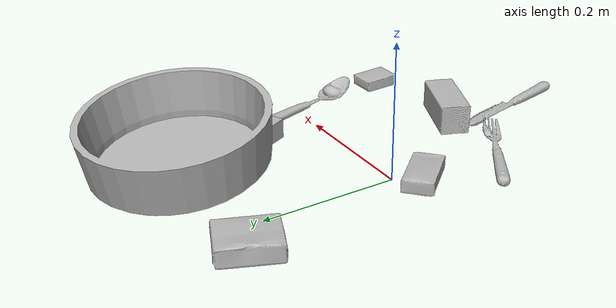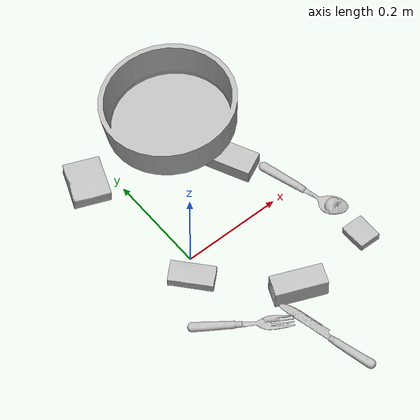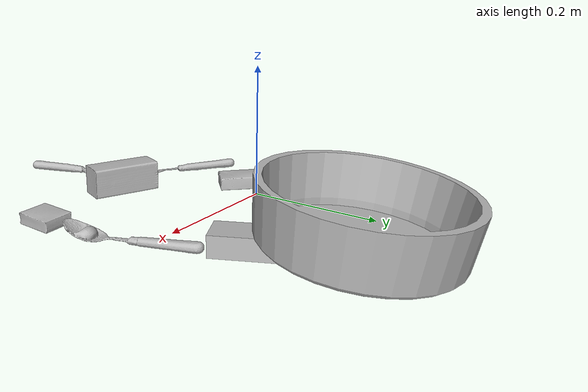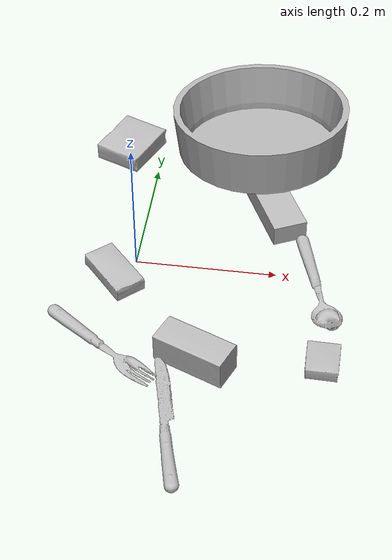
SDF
<sdf version="1.4">
  <world name="default">
    <light name="light1" type="point">
      <pose>0 0 1 0 0 0</pose>
      <diffuse>3 3 3 1</diffuse>
      <specular>3 3 3 1</specular>
    </light>
    <light name="light2" type="point">
      <pose>0 0.5 2 0 0 0</pose>
      <diffuse>1 1 1 1</diffuse>
      <specular>1 1 1 1</specular>
    </light>
    <light name="light3" type="point">
      <pose>0 0.5 2 0 0 0</pose>
      <diffuse>3 3 3 1</diffuse>
      <specular>3 3 3 1</specular>
    </light>
    <scene>
      <ambient>0.7 0.7 0.7</ambient>
    </scene>
    <model name="box11">
      <link name="link_box11">
        <collision name="default">
          <geometry>
            <mesh>
              <uri>model://sugar_box/collision_meshes/collision.obj</uri>
              <scale>0.5 0.5 0.5</scale>
            </mesh>
          </geometry>
          <surface>
            <friction>
              <ode>
                <mu>0.5</mu>
                <mu2>0.5</mu2>
              </ode>
            </friction>
          <contact>
        <ode>
            <max_vel>0</max_vel>
            <min_depth>0.0001</min_depth>
            <kp>1e8</kp>
        </ode>
    </contact></surface>
        </collision>
        <visual name="default">
          <geometry>
            <mesh>
              <uri>model://sugar_box/visual_meshes/visual.dae</uri>
              <scale>0.5 0.5 0.5</scale>
            </mesh>
          </geometry>
        </visual>
        <inertial>
          <mass>0.0727815181016922</mass>
          <pose>0.0005171863595023751 1.924554817378521e-05 -0.00018182402709499002 -0.0004046263004245651 0.001050663405794887 0.002615379021776999</pose>
          <inertia>
            <ixx>1.5160335e-05</ixx>
            <iyy>4.900132e-05</iyy>
            <izz>5.8660433e-05</izz>
            <ixy>0</ixy>
            <ixz>0</ixz>
            <iyz>0</iyz>
          </inertia>
        </inertial>
      </link>
      <pose>-0.023955702781677246 -0.034969575703144073 0.011399303562939167 0.0007758354675318726 -0.02343293735669057 2.3045017529010794</pose>
    </model>
    <model name="box12">
      <link name="link_box12">
        <collision name="default">
          <geometry>
            <mesh>
              <uri>model://gelatin_box/collision_meshes/collision.obj</uri>
              <scale>1.0 1.0 1.0</scale>
            </mesh>
          </geometry>
          <surface>
            <friction>
              <ode>
                <mu>0.5</mu>
                <mu2>0.5</mu2>
              </ode>
            </friction>
          <contact>
        <ode>
            <max_vel>0</max_vel>
            <min_depth>0.0001</min_depth>
            <kp>1e8</kp>
        </ode>
    </contact></surface>
        </collision>
        <visual name="default">
          <geometry>
            <mesh>
              <uri>model://gelatin_box/visual_meshes/visual.dae</uri>
              <scale>1.0 1.0 1.0</scale>
            </mesh>
          </geometry>
        </visual>
        <inertial>
          <mass>0.2761145234107971</mass>
          <pose>0.000431961816502735 0.00011156871187267825 -0.0003640321083366871 -0.0010503719804291966 -0.004755819155973465 0.01644055947187314</pose>
          <inertia>
            <ixx>0.00019491432</ixx>
            <iyy>0.00013922628</iyy>
            <izz>0.00029670302</izz>
            <ixy>0</ixy>
            <ixz>0</ixz>
            <iyz>0</iyz>
          </inertia>
        </inertial>
      </link>
      <pose>-0.0495305210351944 0.24684949219226837 0.015168312937021255 0.005597398480770537 -0.007304450285885857 2.7423326543603936</pose>
    </model>
    <model name="box13">
      <link name="link_box13">
        <collision name="default">
          <geometry>
            <mesh>
              <uri>model://jenga/collision_meshes/collision.obj</uri>
              <scale>1.0 1.0 1.0</scale>
            </mesh>
          </geometry>
          <surface>
            <friction>
              <ode>
                <mu>0.5</mu>
                <mu2>0.5</mu2>
              </ode>
            </friction>
          <contact>
        <ode>
            <max_vel>0</max_vel>
            <min_depth>0.0001</min_depth>
            <kp>1e8</kp>
        </ode>
    </contact></surface>
        </collision>
        <visual name="default">
          <geometry>
            <mesh>
              <uri>model://jenga/visual_meshes/visual.dae</uri>
              <scale>1.0 1.0 1.0</scale>
            </mesh>
          </geometry>
        </visual>
        <inertial>
          <mass>0.30891793966293335</mass>
          <pose>-2.502855807051674e-07 -0.0001025000965455547 -4.0923401684267446e-05 0.0 -7.34215461761844e-07 0.0</pose>
          <inertia>
            <ixx>8.548509e-05</ixx>
            <iyy>0.00057924463</iyy>
            <izz>0.0006183929</izz>
            <ixy>0</ixy>
            <ixz>0</ixz>
            <iyz>0</iyz>
          </inertia>
        </inertial>
      </link>
      <pose>0.18071667850017548 0.140666663646698 0.01500073354691267 7.485362846254333e-05 6.024459279133977e-06 2.0205973755375615</pose>
    </model>
    <model name="box21">
      <link name="link_box21">
        <collision name="default">
          <geometry>
            <mesh>
              <uri>model://pudding_box/collision_meshes/collision.obj</uri>
              <scale>0.5 0.5 0.5</scale>
            </mesh>
          </geometry>
          <surface>
            <friction>
              <ode>
                <mu>0.5</mu>
                <mu2>0.5</mu2>
              </ode>
            </friction>
          <contact>
        <ode>
            <max_vel>0</max_vel>
            <min_depth>0.0001</min_depth>
            <kp>1e8</kp>
        </ode>
    </contact></surface>
        </collision>
        <visual name="default">
          <geometry>
            <mesh>
              <uri>model://pudding_box/visual_meshes/visual.dae</uri>
              <scale>0.5 0.5 0.5</scale>
            </mesh>
          </geometry>
        </visual>
        <inertial>
          <mass>0.049023520201444626</mass>
          <pose>0.0002447411243338138 0.00040339428232982755 -0.0002594413817860186 0.005213100395594636 -0.006603798704538055 0.020079825164231697</pose>
          <inertia>
            <ixx>1.3854642e-05</ixx>
            <iyy>9.321502e-06</iyy>
            <izz>2.046e-05</izz>
            <ixy>0</ixy>
            <ixz>0</ixz>
            <iyz>0</iyz>
          </inertia>
        </inertial>
      </link>
      <pose>0.27764007449150085 -0.16101104021072388 0.009862903505563736 0.02234841696908636 -0.011391773067051435 3.141473841616289</pose>
    </model>
    <model name="box22">
      <link name="link_box22">
        <collision name="default">
          <geometry>
            <mesh>
              <uri>model://wood_block/collision_meshes/collision.obj</uri>
              <scale>0.5 0.5 0.5</scale>
            </mesh>
          </geometry>
          <surface>
            <friction>
              <ode>
                <mu>0.5</mu>
                <mu2>0.5</mu2>
              </ode>
            </friction>
          <contact>
        <ode>
            <max_vel>0</max_vel>
            <min_depth>0.0001</min_depth>
            <kp>1e8</kp>
        </ode>
    </contact></surface>
        </collision>
        <visual name="default">
          <geometry>
            <mesh>
              <uri>model://wood_block/visual_meshes/visual.dae</uri>
              <scale>0.5 0.5 0.5</scale>
            </mesh>
          </geometry>
        </visual>
        <inertial>
          <mass>0.3074011206626892</mass>
          <pose>-2.9066577553749084e-06 -0.000285404734313488 0.00013204291462898254 -0.05220975528717129 -0.005192695583989696 -0.0068613793241849635</pose>
          <inertia>
            <ixx>0.00010283729</ixx>
            <iyy>0.00032486304</iyy>
            <izz>0.0003236479</izz>
            <ixy>0</ixy>
            <ixz>0</ixz>
            <iyz>0</iyz>
          </inertia>
        </inertial>
      </link>
      <pose>0.11056312918663025 -0.17950768768787384 0.022629262879490852 -0.005208528774849558 0.005718802058400895 2.7480816169225286</pose>
    </model>
    <model name="box23">
      <link name="link_box23">
        <collision name="default">
          <geometry>
            <mesh>
              <uri>model://cracker_box/collision_meshes/collision.obj</uri>
              <scale>0.25 0.25 0.25</scale>
            </mesh>
          </geometry>
          <surface>
            <friction>
              <ode>
                <mu>0.5</mu>
                <mu2>0.5</mu2>
              </ode>
            </friction>
          <contact>
        <ode>
            <max_vel>0</max_vel>
            <min_depth>0.0001</min_depth>
            <kp>1e8</kp>
        </ode>
    </contact></surface>
        </collision>
        <visual name="default">
          <geometry>
            <mesh>
              <uri>model://cracker_box/visual_meshes/visual.dae</uri>
              <scale>0.25 0.25 0.25</scale>
            </mesh>
          </geometry>
        </visual>
        <inertial>
          <mass>0.04833315312862396</mass>
          <pose>0.00023660357692278922 6.358561950037256e-05 -0.00042573834070935845 -0.0003162077466025917 -0.011106490531569568 0.002546795235651085</pose>
          <inertia>
            <ixx>7.683624e-06</ixx>
            <iyy>1.268717e-05</iyy>
            <izz>1.8105757e-05</izz>
            <ixy>0</ixy>
            <ixz>0</ixz>
            <iyz>0</iyz>
          </inertia>
        </inertial>
      </link>
      <pose>0.11296810209751129 0.30246755480766296 0.009736728854477406 0.05668795984070507 0.010311585571668221 -2.7440613937025073</pose>
    </model>
    <model name="plate1">
      <link name="link_plate1">
        <collision name="default">
          <geometry>
            <mesh>
              <uri>model://pan_tefal/collision_meshes/collision.obj</uri>
              <scale>1.0 1.0 1.0</scale>
            </mesh>
          </geometry>
          <surface>
            <friction>
              <ode>
                <mu>0.5</mu>
                <mu2>0.5</mu2>
              </ode>
            </friction>
          <contact>
        <ode>
            <max_vel>0</max_vel>
            <min_depth>0.0001</min_depth>
            <kp>1e8</kp>
        </ode>
    </contact></surface>
        </collision>
        <visual name="default">
          <geometry>
            <mesh>
              <uri>model://pan_tefal/visual_meshes/visual.dae</uri>
              <scale>1.0 1.0 1.0</scale>
            </mesh>
          </geometry>
        </visual>
        <inertial>
          <mass>1.5598481893539429</mass>
          <pose>-0.0001800245518097654 3.279111842857674e-05 -0.008514934219419956 0.0008190275877392404 -0.0003301333888364595 -0.33185859522575717</pose>
          <inertia>
            <ixx>0.010767555</ixx>
            <iyy>0.010836974</iyy>
            <izz>0.019820997</izz>
            <ixy>0</ixy>
            <ixz>0</ixz>
            <iyz>0</iyz>
          </inertia>
        </inertial>
      </link>
      <pose>0.15060415863990784 0.24736933410167694 0.06423696875572205 -0.06901990822434563 -0.08637995803629327 -0.5566341540635411</pose>
    </model>
    <model name="silverware1">
      <link name="link_silverware1">
        <collision name="default">
          <geometry>
            <mesh>
              <uri>model://fork/collision_meshes/collision.obj</uri>
              <scale>1.0 1.0 1.0</scale>
            </mesh>
          </geometry>
          <surface>
            <friction>
              <ode>
                <mu>0.5</mu>
                <mu2>0.5</mu2>
              </ode>
            </friction>
          <contact>
        <ode>
            <max_vel>0</max_vel>
            <min_depth>0.0001</min_depth>
            <kp>1e8</kp>
        </ode>
    </contact></surface>
        </collision>
        <visual name="default">
          <geometry>
            <mesh>
              <uri>model://fork/visual_meshes/visual.dae</uri>
              <scale>1.0 1.0 1.0</scale>
            </mesh>
          </geometry>
        </visual>
        <inertial>
          <mass>0.024598950520157814</mass>
          <pose>-0.029570043087005615 0.0004658824182115495 0.0003218861820641905 -0.013552328184634912 -0.010977839901754499 0.014453902526732686</pose>
          <inertia>
            <ixx>8.623325e-07</ixx>
            <iyy>6.422079e-05</iyy>
            <izz>6.460647e-05</izz>
            <ixy>0</ixy>
            <ixz>0</ixz>
            <iyz>0</iyz>
          </inertia>
        </inertial>
      </link>
      <pose>-0.018331490457057953 -0.17003650963306427 0.006152798421680927 0.22562074088364056 0.025980389212931883 -0.6089763207666504</pose>
    </model>
    <model name="silverware2">
      <link name="link_silverware2">
        <collision name="default">
          <geometry>
            <mesh>
              <uri>model://knife/collision_meshes/collision.obj</uri>
              <scale>1.0 1.0 1.0</scale>
            </mesh>
          </geometry>
          <surface>
            <friction>
              <ode>
                <mu>0.5</mu>
                <mu2>0.5</mu2>
              </ode>
            </friction>
          <contact>
        <ode>
            <max_vel>0</max_vel>
            <min_depth>0.0001</min_depth>
            <kp>1e8</kp>
        </ode>
    </contact></surface>
        </collision>
        <visual name="default">
          <geometry>
            <mesh>
              <uri>model://knife/visual_meshes/visual.dae</uri>
              <scale>1.0 1.0 1.0</scale>
            </mesh>
          </geometry>
        </visual>
        <inertial>
          <mass>0.03473280370235443</mass>
          <pose>-0.02378525584936142 0.0015275126788765192 5.062021955382079e-05 0.0730594717304457 0.017248417183571667 -0.007409821049452296</pose>
          <inertia>
            <ixx>9.858578e-07</ixx>
            <iyy>0.00013343782</iyy>
            <izz>0.00013375531</izz>
            <ixy>0</ixy>
            <ixz>0</ixz>
            <iyz>0</iyz>
          </inertia>
        </inertial>
      </link>
      <pose>0.09032011777162552 -0.2878250777721405 0.007997202686965466 -0.05467337162817301 -0.01391272870595248 1.8055385040887764</pose>
    </model>
    <model name="silverware3">
      <link name="link_silverware3">
        <collision name="default">
          <geometry>
            <mesh>
              <uri>model://spoon/collision_meshes/collision.obj</uri>
              <scale>1.0 1.0 1.0</scale>
            </mesh>
          </geometry>
          <surface>
            <friction>
              <ode>
                <mu>0.5</mu>
                <mu2>0.5</mu2>
              </ode>
            </friction>
          <contact>
        <ode>
            <max_vel>0</max_vel>
            <min_depth>0.0001</min_depth>
            <kp>1e8</kp>
        </ode>
    </contact></surface>
        </collision>
        <visual name="default">
          <geometry>
            <mesh>
              <uri>model://spoon/visual_meshes/visual.dae</uri>
              <scale>1.0 1.0 1.0</scale>
            </mesh>
          </geometry>
        </visual>
        <inertial>
          <mass>0.02618301659822464</mass>
          <pose>-0.0055263168178498745 -0.00160341733135283 -0.0007271658978424966 0.035216710647368914 -0.039065848798616645 0.0061506127138874515</pose>
          <inertia>
            <ixx>1.4563418e-06</ixx>
            <iyy>9.96255e-05</iyy>
            <izz>0.000100343714</izz>
            <ixy>0</ixy>
            <ixz>0</ixz>
            <iyz>0</iyz>
          </inertia>
        </inertial>
      </link>
      <pose>0.260565847158432 -0.018293635919690132 0.00838526152074337 0.006729150863600044 0.026892965219125306 -1.272331855213618</pose>
    </model>
  <physics type="ode">
      <max_contacts>50</max_contacts>
      <ode>
        <solver>
          <type>quick</type>
          <iters>75</iters>
        </solver>
        <constraints>
          <contact_max_correcting_vel>0</contact_max_correcting_vel>
          <contact_surface_layer>0</contact_surface_layer>
        </constraints>
      </ode>
    </physics></world>
</sdf>
